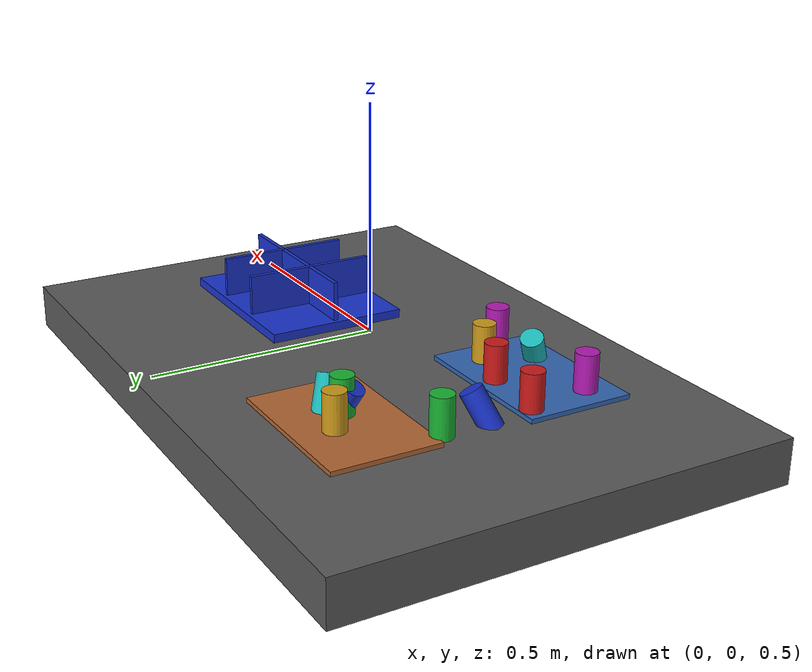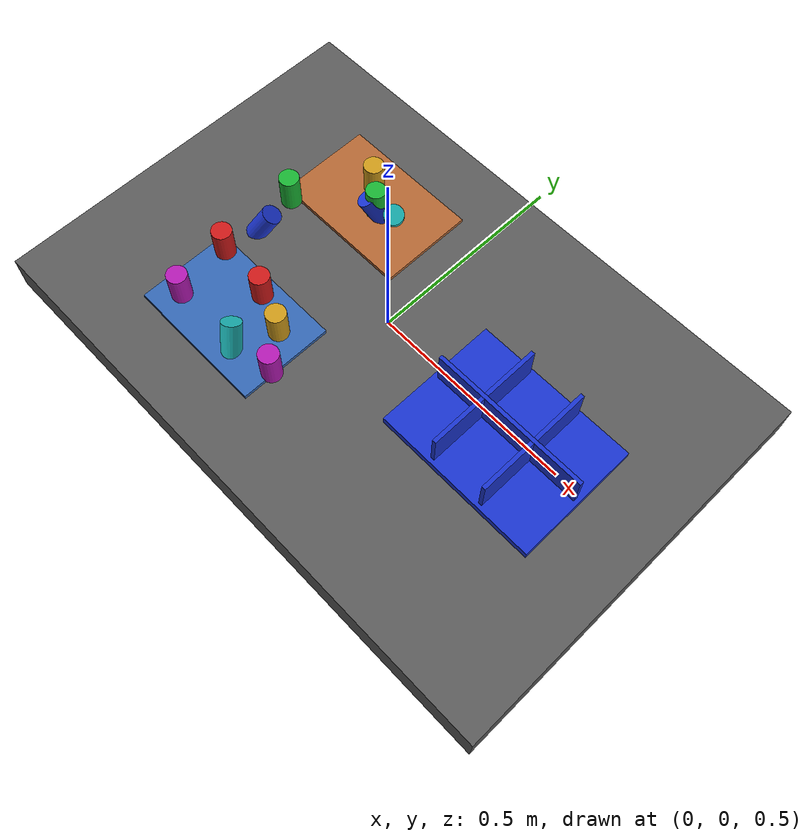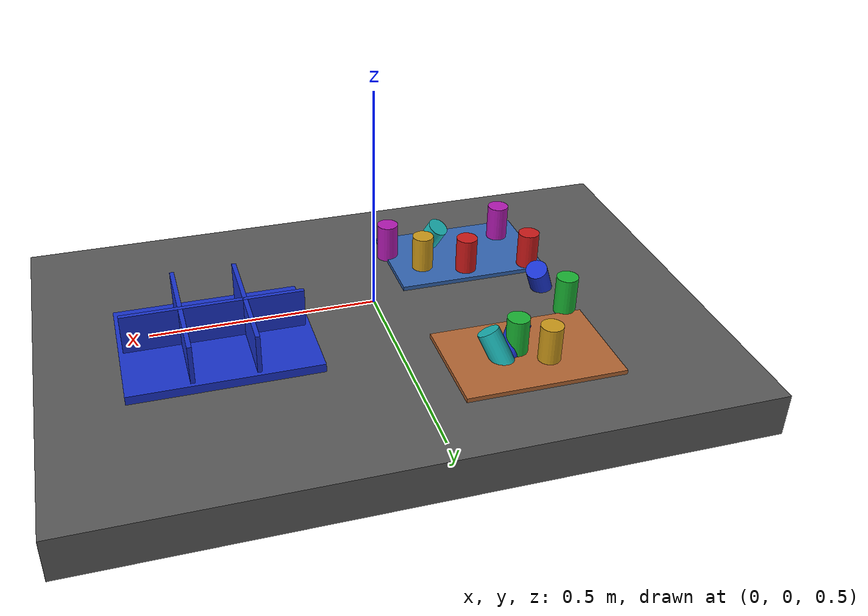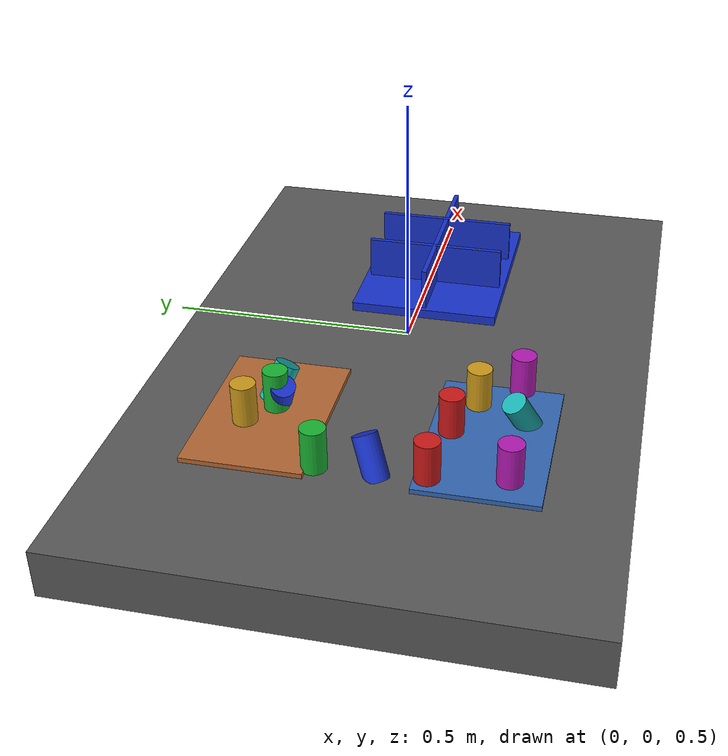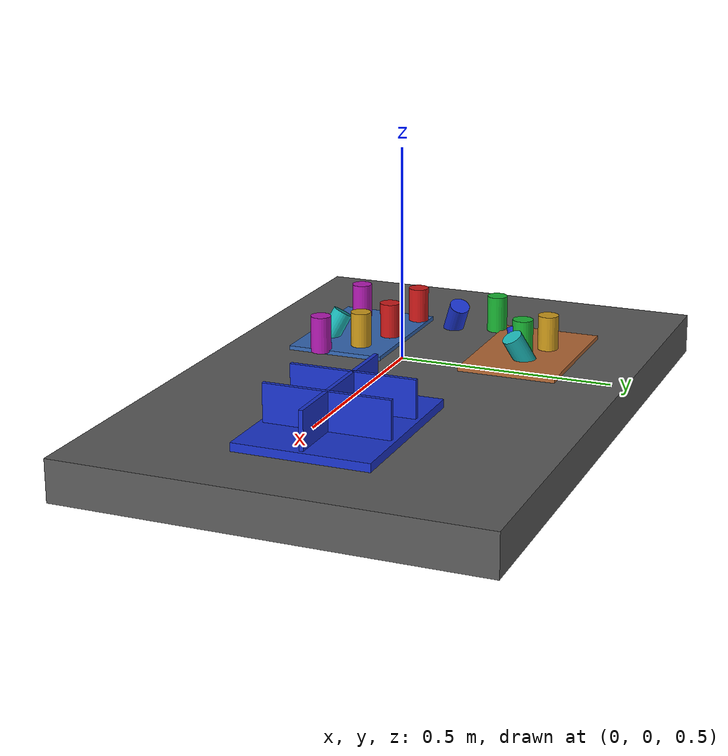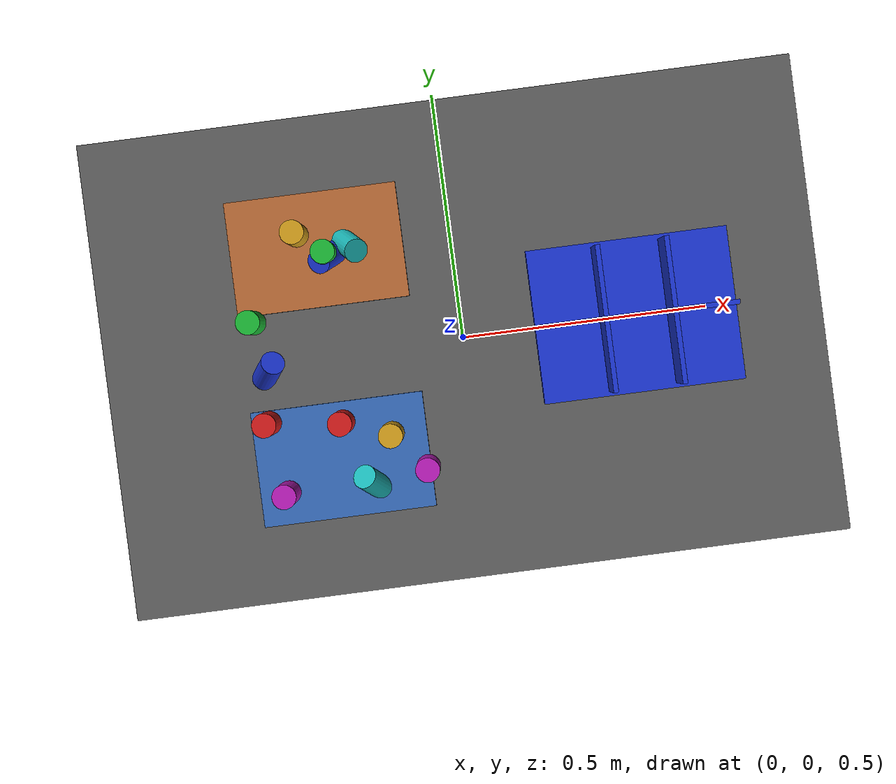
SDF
<?xml version="1.0" ?>
<sdf version="1.9">
  <!-- Standalone M1B scene.  The controller-backed Panda is spawned by the
       existing launch path; this file never alters the frozen M1A cube world. -->
  <world name="industrial_cylinder_v1">
    <physics name="bullet" type="bullet"><max_step_size>0.001</max_step_size><real_time_factor>1.0</real_time_factor></physics>
    <plugin name="gz::sim::systems::Physics" filename="gz-sim-physics-system"><engine><filename>gz-physics-bullet-featherstone-plugin</filename></engine></plugin>
    <plugin name="gz::sim::systems::UserCommands" filename="gz-sim-user-commands-system"/>
    <plugin name="gz::sim::systems::SceneBroadcaster" filename="gz-sim-scene-broadcaster-system"/>
    <plugin name="gz::sim::systems::Sensors" filename="gz-sim-sensors-system"><render_engine>ogre2</render_engine></plugin>
    <gravity>0 0 -9.81</gravity>
    <light type="directional" name="industrial_light"><pose>0 0 5 0 0 0</pose><direction>-0.3 0.2 -0.9</direction><diffuse>0.9 0.9 0.9 1</diffuse></light>
    <model name="industrial_work_table"><static>true</static><link name="link"><pose>0 0 0.4 0 0 0</pose><collision name="collision"><geometry><box><size>1.5 1.0 0.1</size></box></geometry></collision><visual name="visual"><geometry><box><size>1.5 1.0 0.1</size></box></geometry><material><diffuse>0.35 0.35 0.35 1</diffuse></material></visual></link></model>
    <model name="camera_fixture"><static>true</static><link name="camera_rgbd"><pose>-0.80 -0.80 1.40 0 0.77 0.93</pose><sensor name="front_rgbd" type="rgbd_camera"><always_on>1</always_on><update_rate>15</update_rate><topic>/xh/camera/rgbd</topic><camera><horizontal_fov>1.047</horizontal_fov><image><width>640</width><height>480</height><format>R8G8B8</format></image><clip><near>0.1</near><far>4.0</far></clip></camera></sensor></link></model>
    <model name="incoming_zone_a"><static>true</static><link name="link"><pose>-0.28 -0.22 0.455 0 0 0</pose><visual name="visual"><geometry><box><size>0.36 0.24 0.01</size></box></geometry><material><diffuse>0.2 0.4 0.7 1</diffuse></material></visual></link></model>
    <model name="incoming_zone_b"><static>true</static><link name="link"><pose>-0.28 0.22 0.455 0 0 0</pose><visual name="visual"><geometry><box><size>0.36 0.24 0.01</size></box></geometry><material><diffuse>0.7 0.4 0.2 1</diffuse></material></visual></link></model>
    <!-- M1B_RANDOM_PARTS_BEGIN -->
    <model name="cylinder_01"><pose>-0.4223 -0.1256 0.5000 0.0000 0.0000 2.6062</pose><link name="link"><inertial><mass>0.06</mass></inertial><collision name="collision"><geometry><cylinder><radius>0.025</radius><length>0.09</length></cylinder></geometry></collision><visual name="visual"><geometry><cylinder><radius>0.025</radius><length>0.09</length></cylinder></geometry><material><diffuse>0.800 0.100 0.100 1</diffuse><specular>0.15 0.15 0.15 1</specular></material></visual></link></model>
    <model name="cylinder_02"><pose>-0.4283 0.0852 0.5000 3.1416 0.0000 1.0177</pose><link name="link"><inertial><mass>0.06</mass></inertial><collision name="collision"><geometry><cylinder><radius>0.025</radius><length>0.09</length></cylinder></geometry></collision><visual name="visual"><geometry><cylinder><radius>0.025</radius><length>0.09</length></cylinder></geometry><material><diffuse>0.100 0.700 0.200 1</diffuse><specular>0.15 0.15 0.15 1</specular></material></visual></link></model>
    <model name="cylinder_03"><pose>-0.2535 0.2024 0.4800 0.4500 -0.3000 -0.4229</pose><link name="link"><inertial><mass>0.06</mass></inertial><collision name="collision"><geometry><cylinder><radius>0.025</radius><length>0.09</length></cylinder></geometry></collision><visual name="visual"><geometry><cylinder><radius>0.025</radius><length>0.09</length></cylinder></geometry><material><diffuse>0.100 0.200 0.800 1</diffuse><specular>0.15 0.15 0.15 1</specular></material></visual></link></model>
    <model name="cylinder_04"><pose>-0.1715 -0.1791 0.5000 0.0000 0.0000 2.5324</pose><link name="link"><inertial><mass>0.06</mass></inertial><collision name="collision"><geometry><cylinder><radius>0.025</radius><length>0.09</length></cylinder></geometry></collision><visual name="visual"><geometry><cylinder><radius>0.025</radius><length>0.09</length></cylinder></geometry><material><diffuse>0.800 0.600 0.100 1</diffuse><specular>0.15 0.15 0.15 1</specular></material></visual></link></model>
    <model name="cylinder_05"><pose>-0.4003 -0.2739 0.5000 3.1416 0.0000 -0.6522</pose><link name="link"><inertial><mass>0.06</mass></inertial><collision name="collision"><geometry><cylinder><radius>0.025</radius><length>0.09</length></cylinder></geometry></collision><visual name="visual"><geometry><cylinder><radius>0.025</radius><length>0.09</length></cylinder></geometry><material><diffuse>0.700 0.100 0.700 1</diffuse><specular>0.15 0.15 0.15 1</specular></material></visual></link></model>
    <model name="cylinder_06"><pose>-0.2103 0.2190 0.4800 0.4500 -0.3000 1.3343</pose><link name="link"><inertial><mass>0.06</mass></inertial><collision name="collision"><geometry><cylinder><radius>0.025</radius><length>0.09</length></cylinder></geometry></collision><visual name="visual"><geometry><cylinder><radius>0.025</radius><length>0.09</length></cylinder></geometry><material><diffuse>0.100 0.700 0.700 1</diffuse><specular>0.15 0.15 0.15 1</specular></material></visual></link></model>
    <model name="cylinder_07"><pose>-0.2703 -0.1423 0.5000 0.0000 0.0000 -0.7646</pose><link name="link"><inertial><mass>0.06</mass></inertial><collision name="collision"><geometry><cylinder><radius>0.025</radius><length>0.09</length></cylinder></geometry></collision><visual name="visual"><geometry><cylinder><radius>0.025</radius><length>0.09</length></cylinder></geometry><material><diffuse>0.800 0.100 0.100 1</diffuse><specular>0.15 0.15 0.15 1</specular></material></visual></link></model>
    <model name="cylinder_08"><pose>-0.2601 0.2083 0.5000 3.1416 0.0000 -1.7379</pose><link name="link"><inertial><mass>0.06</mass></inertial><collision name="collision"><geometry><cylinder><radius>0.025</radius><length>0.09</length></cylinder></geometry></collision><visual name="visual"><geometry><cylinder><radius>0.025</radius><length>0.09</length></cylinder></geometry><material><diffuse>0.100 0.700 0.200 1</diffuse><specular>0.15 0.15 0.15 1</specular></material></visual></link></model>
    <model name="cylinder_09"><pose>-0.4082 -0.0178 0.4800 0.4500 -0.3000 2.8727</pose><link name="link"><inertial><mass>0.06</mass></inertial><collision name="collision"><geometry><cylinder><radius>0.025</radius><length>0.09</length></cylinder></geometry></collision><visual name="visual"><geometry><cylinder><radius>0.025</radius><length>0.09</length></cylinder></geometry><material><diffuse>0.100 0.200 0.800 1</diffuse><specular>0.15 0.15 0.15 1</specular></material></visual></link></model>
    <model name="cylinder_10"><pose>-0.3168 0.2548 0.5000 0.0000 0.0000 0.1899</pose><link name="link"><inertial><mass>0.06</mass></inertial><collision name="collision"><geometry><cylinder><radius>0.025</radius><length>0.09</length></cylinder></geometry></collision><visual name="visual"><geometry><cylinder><radius>0.025</radius><length>0.09</length></cylinder></geometry><material><diffuse>0.800 0.600 0.100 1</diffuse><specular>0.15 0.15 0.15 1</specular></material></visual></link></model>
    <model name="cylinder_11"><pose>-0.1057 -0.2570 0.5000 3.1416 0.0000 -2.6886</pose><link name="link"><inertial><mass>0.06</mass></inertial><collision name="collision"><geometry><cylinder><radius>0.025</radius><length>0.09</length></cylinder></geometry></collision><visual name="visual"><geometry><cylinder><radius>0.025</radius><length>0.09</length></cylinder></geometry><material><diffuse>0.700 0.100 0.700 1</diffuse><specular>0.15 0.15 0.15 1</specular></material></visual></link></model>
    <model name="cylinder_12"><pose>-0.2216 -0.2734 0.4800 0.4500 -0.3000 -1.9086</pose><link name="link"><inertial><mass>0.06</mass></inertial><collision name="collision"><geometry><cylinder><radius>0.025</radius><length>0.09</length></cylinder></geometry></collision><visual name="visual"><geometry><cylinder><radius>0.025</radius><length>0.09</length></cylinder></geometry><material><diffuse>0.100 0.700 0.700 1</diffuse><specular>0.15 0.15 0.15 1</specular></material></visual></link></model>
    <!-- M1B_RANDOM_PARTS_END -->
    <model name="blue_partition_bin"><static>true</static><pose>0.36 0 0.45 0 0 0</pose><link name="link"><collision name="floor"><pose>0 0 0.01 0 0 0</pose><geometry><box><size>0.42 0.32 0.02</size></box></geometry></collision><visual name="floor_visual"><pose>0 0 0.01 0 0 0</pose><geometry><box><size>0.42 0.32 0.02</size></box></geometry><material><diffuse>0.1 0.2 0.8 1</diffuse></material></visual><visual name="row_divider"><pose>0 0 0.06 0 0 0</pose><geometry><box><size>0.40 0.01 0.10</size></box></geometry><material><diffuse>0.1 0.2 0.8 1</diffuse></material></visual><visual name="col_divider_a"><pose>-0.07 0 0.06 0 0 0</pose><geometry><box><size>0.01 0.30 0.10</size></box></geometry><material><diffuse>0.1 0.2 0.8 1</diffuse></material></visual><visual name="col_divider_b"><pose>0.07 0 0.06 0 0 0</pose><geometry><box><size>0.01 0.30 0.10</size></box></geometry><material><diffuse>0.1 0.2 0.8 1</diffuse></material></visual></link></model>
    <!-- Reserved only: second table, bin transport corridor, stackable-bin
         collision volume, and second arm mounting namespace. -->
  </world>
</sdf>
